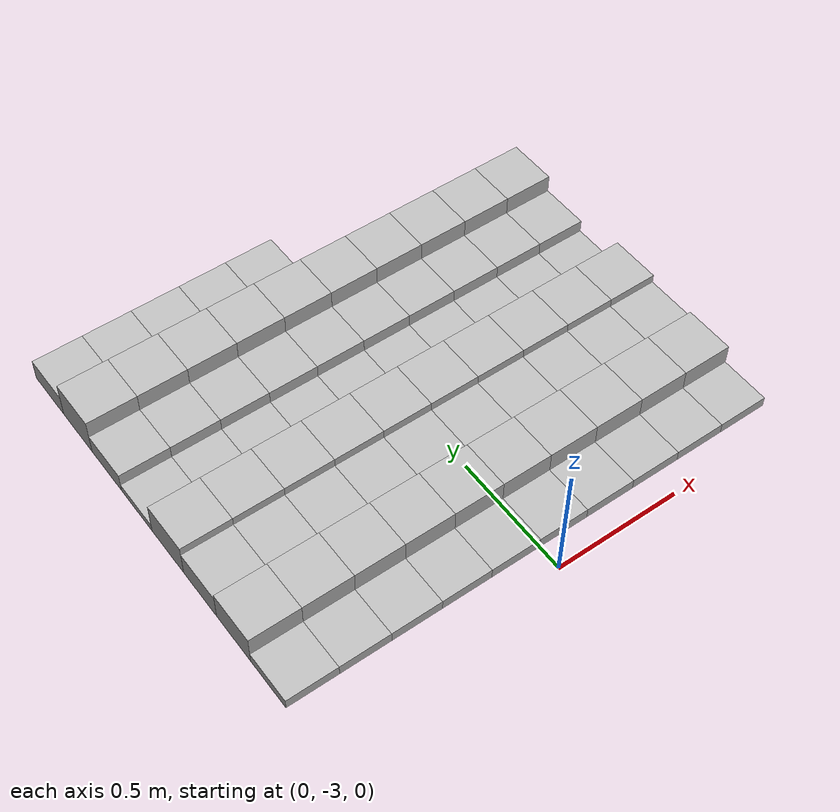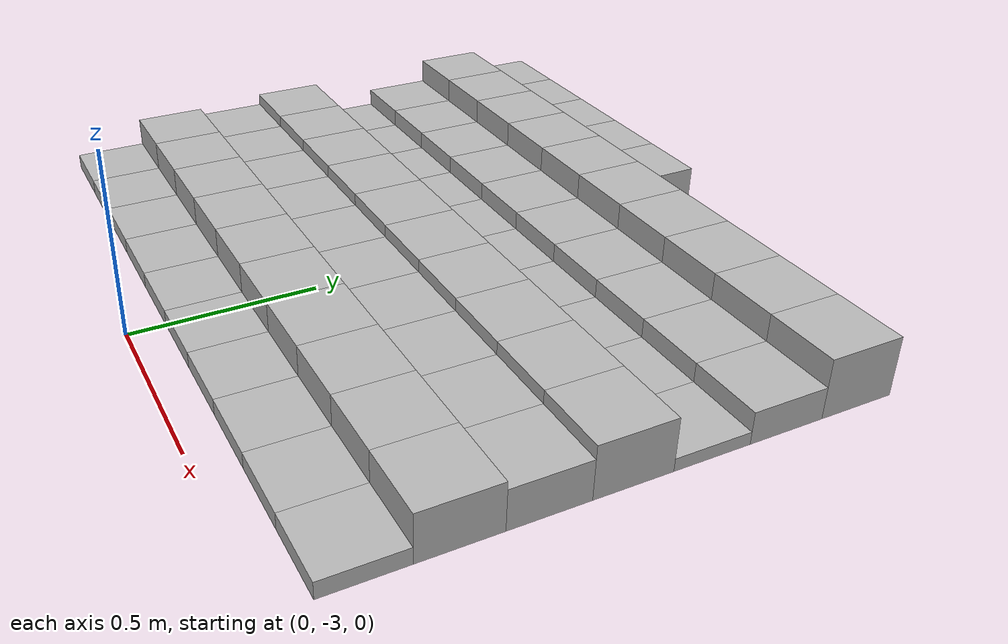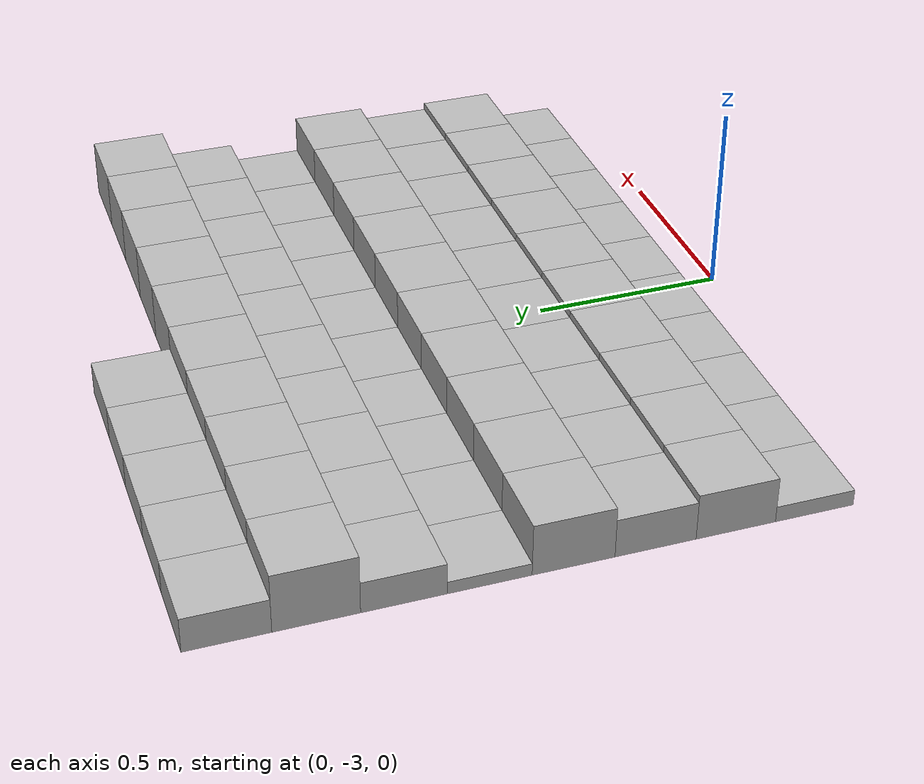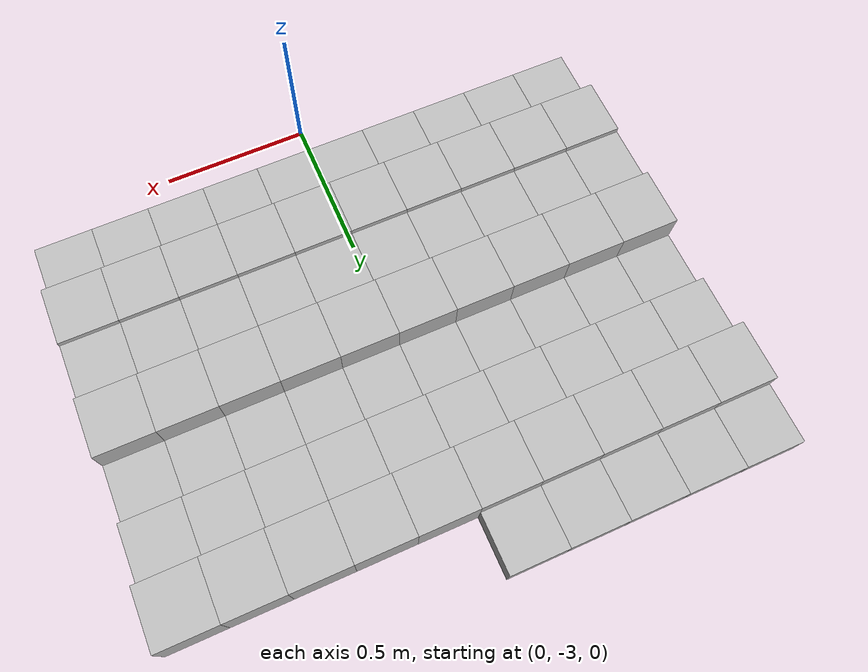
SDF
<sdf version="1.6">
 <model name="Terrain">
  <static>true</static>
  <link name="box_7_0">
   <pose>-0.9 -1.4 0.0462164252197 0 0 0</pose>
   <inertial>
    <mass>1.0</mass>
    <inertia><ixx>0.0</ixx><ixy>0.0</ixy><ixz>0.0</ixz><iyy>0.0</iyy><iyz>0.0</iyz><izz>0.0</izz></inertia>
   </inertial>
   <collision name="collision"><geometry><box><size>0.2 0.2 0.0924328504394</size></box></geometry></collision>
   <visual name="visual"><geometry><box><size>0.2 0.2 0.0924328504394</size></box></geometry></visual>
  </link>
  <link name="box_7_1">
   <pose>-0.7 -1.4 0.0462164252197 0 0 0</pose>
   <inertial>
    <mass>1.0</mass>
    <inertia><ixx>0.0</ixx><ixy>0.0</ixy><ixz>0.0</ixz><iyy>0.0</iyy><iyz>0.0</iyz><izz>0.0</izz></inertia>
   </inertial>
   <collision name="collision"><geometry><box><size>0.2 0.2 0.0924328504394</size></box></geometry></collision>
   <visual name="visual"><geometry><box><size>0.2 0.2 0.0924328504394</size></box></geometry></visual>
  </link>
  <link name="box_7_2">
   <pose>-0.5 -1.4 0.0462164252197 0 0 0</pose>
   <inertial>
    <mass>1.0</mass>
    <inertia><ixx>0.0</ixx><ixy>0.0</ixy><ixz>0.0</ixz><iyy>0.0</iyy><iyz>0.0</iyz><izz>0.0</izz></inertia>
   </inertial>
   <collision name="collision"><geometry><box><size>0.2 0.2 0.0924328504394</size></box></geometry></collision>
   <visual name="visual"><geometry><box><size>0.2 0.2 0.0924328504394</size></box></geometry></visual>
  </link>
  <link name="box_7_3">
   <pose>-0.3 -1.4 0.0462164252197 0 0 0</pose>
   <inertial>
    <mass>1.0</mass>
    <inertia><ixx>0.0</ixx><ixy>0.0</ixy><ixz>0.0</ixz><iyy>0.0</iyy><iyz>0.0</iyz><izz>0.0</izz></inertia>
   </inertial>
   <collision name="collision"><geometry><box><size>0.2 0.2 0.0924328504394</size></box></geometry></collision>
   <visual name="visual"><geometry><box><size>0.2 0.2 0.0924328504394</size></box></geometry></visual>
  </link>
  <link name="box_7_4">
   <pose>-0.1 -1.4 0.0462164252197 0 0 0</pose>
   <inertial>
    <mass>1.0</mass>
    <inertia><ixx>0.0</ixx><ixy>0.0</ixy><ixz>0.0</ixz><iyy>0.0</iyy><iyz>0.0</iyz><izz>0.0</izz></inertia>
   </inertial>
   <collision name="collision"><geometry><box><size>0.2 0.2 0.0924328504394</size></box></geometry></collision>
   <visual name="visual"><geometry><box><size>0.2 0.2 0.0924328504394</size></box></geometry></visual>
  </link>
  <link name="box_8_0">
   <pose>-0.9 -1.6 0.0790505273139 0 0 0</pose>
   <inertial>
    <mass>1.0</mass>
    <inertia><ixx>0.0</ixx><ixy>0.0</ixy><ixz>0.0</ixz><iyy>0.0</iyy><iyz>0.0</iyz><izz>0.0</izz></inertia>
   </inertial>
   <collision name="collision"><geometry><box><size>0.2 0.2 0.158101054628</size></box></geometry></collision>
   <visual name="visual"><geometry><box><size>0.2 0.2 0.158101054628</size></box></geometry></visual>
  </link>
  <link name="box_8_1">
   <pose>-0.7 -1.6 0.0790505273139 0 0 0</pose>
   <inertial>
    <mass>1.0</mass>
    <inertia><ixx>0.0</ixx><ixy>0.0</ixy><ixz>0.0</ixz><iyy>0.0</iyy><iyz>0.0</iyz><izz>0.0</izz></inertia>
   </inertial>
   <collision name="collision"><geometry><box><size>0.2 0.2 0.158101054628</size></box></geometry></collision>
   <visual name="visual"><geometry><box><size>0.2 0.2 0.158101054628</size></box></geometry></visual>
  </link>
  <link name="box_8_2">
   <pose>-0.5 -1.6 0.0790505273139 0 0 0</pose>
   <inertial>
    <mass>1.0</mass>
    <inertia><ixx>0.0</ixx><ixy>0.0</ixy><ixz>0.0</ixz><iyy>0.0</iyy><iyz>0.0</iyz><izz>0.0</izz></inertia>
   </inertial>
   <collision name="collision"><geometry><box><size>0.2 0.2 0.158101054628</size></box></geometry></collision>
   <visual name="visual"><geometry><box><size>0.2 0.2 0.158101054628</size></box></geometry></visual>
  </link>
  <link name="box_8_3">
   <pose>-0.3 -1.6 0.0790505273139 0 0 0</pose>
   <inertial>
    <mass>1.0</mass>
    <inertia><ixx>0.0</ixx><ixy>0.0</ixy><ixz>0.0</ixz><iyy>0.0</iyy><iyz>0.0</iyz><izz>0.0</izz></inertia>
   </inertial>
   <collision name="collision"><geometry><box><size>0.2 0.2 0.158101054628</size></box></geometry></collision>
   <visual name="visual"><geometry><box><size>0.2 0.2 0.158101054628</size></box></geometry></visual>
  </link>
  <link name="box_8_4">
   <pose>-0.1 -1.6 0.0790505273139 0 0 0</pose>
   <inertial>
    <mass>1.0</mass>
    <inertia><ixx>0.0</ixx><ixy>0.0</ixy><ixz>0.0</ixz><iyy>0.0</iyy><iyz>0.0</iyz><izz>0.0</izz></inertia>
   </inertial>
   <collision name="collision"><geometry><box><size>0.2 0.2 0.158101054628</size></box></geometry></collision>
   <visual name="visual"><geometry><box><size>0.2 0.2 0.158101054628</size></box></geometry></visual>
  </link>
  <link name="box_8_5">
   <pose>0.1 -1.6 0.0790505273139 0 0 0</pose>
   <inertial>
    <mass>1.0</mass>
    <inertia><ixx>0.0</ixx><ixy>0.0</ixy><ixz>0.0</ixz><iyy>0.0</iyy><iyz>0.0</iyz><izz>0.0</izz></inertia>
   </inertial>
   <collision name="collision"><geometry><box><size>0.2 0.2 0.158101054628</size></box></geometry></collision>
   <visual name="visual"><geometry><box><size>0.2 0.2 0.158101054628</size></box></geometry></visual>
  </link>
  <link name="box_8_6">
   <pose>0.3 -1.6 0.0790505273139 0 0 0</pose>
   <inertial>
    <mass>1.0</mass>
    <inertia><ixx>0.0</ixx><ixy>0.0</ixy><ixz>0.0</ixz><iyy>0.0</iyy><iyz>0.0</iyz><izz>0.0</izz></inertia>
   </inertial>
   <collision name="collision"><geometry><box><size>0.2 0.2 0.158101054628</size></box></geometry></collision>
   <visual name="visual"><geometry><box><size>0.2 0.2 0.158101054628</size></box></geometry></visual>
  </link>
  <link name="box_8_7">
   <pose>0.5 -1.6 0.0790505273139 0 0 0</pose>
   <inertial>
    <mass>1.0</mass>
    <inertia><ixx>0.0</ixx><ixy>0.0</ixy><ixz>0.0</ixz><iyy>0.0</iyy><iyz>0.0</iyz><izz>0.0</izz></inertia>
   </inertial>
   <collision name="collision"><geometry><box><size>0.2 0.2 0.158101054628</size></box></geometry></collision>
   <visual name="visual"><geometry><box><size>0.2 0.2 0.158101054628</size></box></geometry></visual>
  </link>
  <link name="box_8_8">
   <pose>0.7 -1.6 0.0790505273139 0 0 0</pose>
   <inertial>
    <mass>1.0</mass>
    <inertia><ixx>0.0</ixx><ixy>0.0</ixy><ixz>0.0</ixz><iyy>0.0</iyy><iyz>0.0</iyz><izz>0.0</izz></inertia>
   </inertial>
   <collision name="collision"><geometry><box><size>0.2 0.2 0.158101054628</size></box></geometry></collision>
   <visual name="visual"><geometry><box><size>0.2 0.2 0.158101054628</size></box></geometry></visual>
  </link>
  <link name="box_8_9">
   <pose>0.9 -1.6 0.0790505273139 0 0 0</pose>
   <inertial>
    <mass>1.0</mass>
    <inertia><ixx>0.0</ixx><ixy>0.0</ixy><ixz>0.0</ixz><iyy>0.0</iyy><iyz>0.0</iyz><izz>0.0</izz></inertia>
   </inertial>
   <collision name="collision"><geometry><box><size>0.2 0.2 0.158101054628</size></box></geometry></collision>
   <visual name="visual"><geometry><box><size>0.2 0.2 0.158101054628</size></box></geometry></visual>
  </link>
  <link name="box_9_0">
   <pose>-0.9 -1.8 0.042292439194 0 0 0</pose>
   <inertial>
    <mass>1.0</mass>
    <inertia><ixx>0.0</ixx><ixy>0.0</ixy><ixz>0.0</ixz><iyy>0.0</iyy><iyz>0.0</iyz><izz>0.0</izz></inertia>
   </inertial>
   <collision name="collision"><geometry><box><size>0.2 0.2 0.084584878388</size></box></geometry></collision>
   <visual name="visual"><geometry><box><size>0.2 0.2 0.084584878388</size></box></geometry></visual>
  </link>
  <link name="box_9_1">
   <pose>-0.7 -1.8 0.042292439194 0 0 0</pose>
   <inertial>
    <mass>1.0</mass>
    <inertia><ixx>0.0</ixx><ixy>0.0</ixy><ixz>0.0</ixz><iyy>0.0</iyy><iyz>0.0</iyz><izz>0.0</izz></inertia>
   </inertial>
   <collision name="collision"><geometry><box><size>0.2 0.2 0.084584878388</size></box></geometry></collision>
   <visual name="visual"><geometry><box><size>0.2 0.2 0.084584878388</size></box></geometry></visual>
  </link>
  <link name="box_9_2">
   <pose>-0.5 -1.8 0.042292439194 0 0 0</pose>
   <inertial>
    <mass>1.0</mass>
    <inertia><ixx>0.0</ixx><ixy>0.0</ixy><ixz>0.0</ixz><iyy>0.0</iyy><iyz>0.0</iyz><izz>0.0</izz></inertia>
   </inertial>
   <collision name="collision"><geometry><box><size>0.2 0.2 0.084584878388</size></box></geometry></collision>
   <visual name="visual"><geometry><box><size>0.2 0.2 0.084584878388</size></box></geometry></visual>
  </link>
  <link name="box_9_3">
   <pose>-0.3 -1.8 0.042292439194 0 0 0</pose>
   <inertial>
    <mass>1.0</mass>
    <inertia><ixx>0.0</ixx><ixy>0.0</ixy><ixz>0.0</ixz><iyy>0.0</iyy><iyz>0.0</iyz><izz>0.0</izz></inertia>
   </inertial>
   <collision name="collision"><geometry><box><size>0.2 0.2 0.084584878388</size></box></geometry></collision>
   <visual name="visual"><geometry><box><size>0.2 0.2 0.084584878388</size></box></geometry></visual>
  </link>
  <link name="box_9_4">
   <pose>-0.1 -1.8 0.042292439194 0 0 0</pose>
   <inertial>
    <mass>1.0</mass>
    <inertia><ixx>0.0</ixx><ixy>0.0</ixy><ixz>0.0</ixz><iyy>0.0</iyy><iyz>0.0</iyz><izz>0.0</izz></inertia>
   </inertial>
   <collision name="collision"><geometry><box><size>0.2 0.2 0.084584878388</size></box></geometry></collision>
   <visual name="visual"><geometry><box><size>0.2 0.2 0.084584878388</size></box></geometry></visual>
  </link>
  <link name="box_9_5">
   <pose>0.1 -1.8 0.042292439194 0 0 0</pose>
   <inertial>
    <mass>1.0</mass>
    <inertia><ixx>0.0</ixx><ixy>0.0</ixy><ixz>0.0</ixz><iyy>0.0</iyy><iyz>0.0</iyz><izz>0.0</izz></inertia>
   </inertial>
   <collision name="collision"><geometry><box><size>0.2 0.2 0.084584878388</size></box></geometry></collision>
   <visual name="visual"><geometry><box><size>0.2 0.2 0.084584878388</size></box></geometry></visual>
  </link>
  <link name="box_9_6">
   <pose>0.3 -1.8 0.042292439194 0 0 0</pose>
   <inertial>
    <mass>1.0</mass>
    <inertia><ixx>0.0</ixx><ixy>0.0</ixy><ixz>0.0</ixz><iyy>0.0</iyy><iyz>0.0</iyz><izz>0.0</izz></inertia>
   </inertial>
   <collision name="collision"><geometry><box><size>0.2 0.2 0.084584878388</size></box></geometry></collision>
   <visual name="visual"><geometry><box><size>0.2 0.2 0.084584878388</size></box></geometry></visual>
  </link>
  <link name="box_9_7">
   <pose>0.5 -1.8 0.042292439194 0 0 0</pose>
   <inertial>
    <mass>1.0</mass>
    <inertia><ixx>0.0</ixx><ixy>0.0</ixy><ixz>0.0</ixz><iyy>0.0</iyy><iyz>0.0</iyz><izz>0.0</izz></inertia>
   </inertial>
   <collision name="collision"><geometry><box><size>0.2 0.2 0.084584878388</size></box></geometry></collision>
   <visual name="visual"><geometry><box><size>0.2 0.2 0.084584878388</size></box></geometry></visual>
  </link>
  <link name="box_9_8">
   <pose>0.7 -1.8 0.042292439194 0 0 0</pose>
   <inertial>
    <mass>1.0</mass>
    <inertia><ixx>0.0</ixx><ixy>0.0</ixy><ixz>0.0</ixz><iyy>0.0</iyy><iyz>0.0</iyz><izz>0.0</izz></inertia>
   </inertial>
   <collision name="collision"><geometry><box><size>0.2 0.2 0.084584878388</size></box></geometry></collision>
   <visual name="visual"><geometry><box><size>0.2 0.2 0.084584878388</size></box></geometry></visual>
  </link>
  <link name="box_9_9">
   <pose>0.9 -1.8 0.042292439194 0 0 0</pose>
   <inertial>
    <mass>1.0</mass>
    <inertia><ixx>0.0</ixx><ixy>0.0</ixy><ixz>0.0</ixz><iyy>0.0</iyy><iyz>0.0</iyz><izz>0.0</izz></inertia>
   </inertial>
   <collision name="collision"><geometry><box><size>0.2 0.2 0.084584878388</size></box></geometry></collision>
   <visual name="visual"><geometry><box><size>0.2 0.2 0.084584878388</size></box></geometry></visual>
  </link>
  <link name="box_10_0">
   <pose>-0.9 -2.0 0.0166693812321 0 0 0</pose>
   <inertial>
    <mass>1.0</mass>
    <inertia><ixx>0.0</ixx><ixy>0.0</ixy><ixz>0.0</ixz><iyy>0.0</iyy><iyz>0.0</iyz><izz>0.0</izz></inertia>
   </inertial>
   <collision name="collision"><geometry><box><size>0.2 0.2 0.0333387624643</size></box></geometry></collision>
   <visual name="visual"><geometry><box><size>0.2 0.2 0.0333387624643</size></box></geometry></visual>
  </link>
  <link name="box_10_1">
   <pose>-0.7 -2.0 0.0166693812321 0 0 0</pose>
   <inertial>
    <mass>1.0</mass>
    <inertia><ixx>0.0</ixx><ixy>0.0</ixy><ixz>0.0</ixz><iyy>0.0</iyy><iyz>0.0</iyz><izz>0.0</izz></inertia>
   </inertial>
   <collision name="collision"><geometry><box><size>0.2 0.2 0.0333387624643</size></box></geometry></collision>
   <visual name="visual"><geometry><box><size>0.2 0.2 0.0333387624643</size></box></geometry></visual>
  </link>
  <link name="box_10_2">
   <pose>-0.5 -2.0 0.0166693812321 0 0 0</pose>
   <inertial>
    <mass>1.0</mass>
    <inertia><ixx>0.0</ixx><ixy>0.0</ixy><ixz>0.0</ixz><iyy>0.0</iyy><iyz>0.0</iyz><izz>0.0</izz></inertia>
   </inertial>
   <collision name="collision"><geometry><box><size>0.2 0.2 0.0333387624643</size></box></geometry></collision>
   <visual name="visual"><geometry><box><size>0.2 0.2 0.0333387624643</size></box></geometry></visual>
  </link>
  <link name="box_10_3">
   <pose>-0.3 -2.0 0.0166693812321 0 0 0</pose>
   <inertial>
    <mass>1.0</mass>
    <inertia><ixx>0.0</ixx><ixy>0.0</ixy><ixz>0.0</ixz><iyy>0.0</iyy><iyz>0.0</iyz><izz>0.0</izz></inertia>
   </inertial>
   <collision name="collision"><geometry><box><size>0.2 0.2 0.0333387624643</size></box></geometry></collision>
   <visual name="visual"><geometry><box><size>0.2 0.2 0.0333387624643</size></box></geometry></visual>
  </link>
  <link name="box_10_4">
   <pose>-0.1 -2.0 0.0166693812321 0 0 0</pose>
   <inertial>
    <mass>1.0</mass>
    <inertia><ixx>0.0</ixx><ixy>0.0</ixy><ixz>0.0</ixz><iyy>0.0</iyy><iyz>0.0</iyz><izz>0.0</izz></inertia>
   </inertial>
   <collision name="collision"><geometry><box><size>0.2 0.2 0.0333387624643</size></box></geometry></collision>
   <visual name="visual"><geometry><box><size>0.2 0.2 0.0333387624643</size></box></geometry></visual>
  </link>
  <link name="box_10_5">
   <pose>0.1 -2.0 0.0166693812321 0 0 0</pose>
   <inertial>
    <mass>1.0</mass>
    <inertia><ixx>0.0</ixx><ixy>0.0</ixy><ixz>0.0</ixz><iyy>0.0</iyy><iyz>0.0</iyz><izz>0.0</izz></inertia>
   </inertial>
   <collision name="collision"><geometry><box><size>0.2 0.2 0.0333387624643</size></box></geometry></collision>
   <visual name="visual"><geometry><box><size>0.2 0.2 0.0333387624643</size></box></geometry></visual>
  </link>
  <link name="box_10_6">
   <pose>0.3 -2.0 0.0166693812321 0 0 0</pose>
   <inertial>
    <mass>1.0</mass>
    <inertia><ixx>0.0</ixx><ixy>0.0</ixy><ixz>0.0</ixz><iyy>0.0</iyy><iyz>0.0</iyz><izz>0.0</izz></inertia>
   </inertial>
   <collision name="collision"><geometry><box><size>0.2 0.2 0.0333387624643</size></box></geometry></collision>
   <visual name="visual"><geometry><box><size>0.2 0.2 0.0333387624643</size></box></geometry></visual>
  </link>
  <link name="box_10_7">
   <pose>0.5 -2.0 0.0166693812321 0 0 0</pose>
   <inertial>
    <mass>1.0</mass>
    <inertia><ixx>0.0</ixx><ixy>0.0</ixy><ixz>0.0</ixz><iyy>0.0</iyy><iyz>0.0</iyz><izz>0.0</izz></inertia>
   </inertial>
   <collision name="collision"><geometry><box><size>0.2 0.2 0.0333387624643</size></box></geometry></collision>
   <visual name="visual"><geometry><box><size>0.2 0.2 0.0333387624643</size></box></geometry></visual>
  </link>
  <link name="box_10_8">
   <pose>0.7 -2.0 0.0166693812321 0 0 0</pose>
   <inertial>
    <mass>1.0</mass>
    <inertia><ixx>0.0</ixx><ixy>0.0</ixy><ixz>0.0</ixz><iyy>0.0</iyy><iyz>0.0</iyz><izz>0.0</izz></inertia>
   </inertial>
   <collision name="collision"><geometry><box><size>0.2 0.2 0.0333387624643</size></box></geometry></collision>
   <visual name="visual"><geometry><box><size>0.2 0.2 0.0333387624643</size></box></geometry></visual>
  </link>
  <link name="box_10_9">
   <pose>0.9 -2.0 0.0166693812321 0 0 0</pose>
   <inertial>
    <mass>1.0</mass>
    <inertia><ixx>0.0</ixx><ixy>0.0</ixy><ixz>0.0</ixz><iyy>0.0</iyy><iyz>0.0</iyz><izz>0.0</izz></inertia>
   </inertial>
   <collision name="collision"><geometry><box><size>0.2 0.2 0.0333387624643</size></box></geometry></collision>
   <visual name="visual"><geometry><box><size>0.2 0.2 0.0333387624643</size></box></geometry></visual>
  </link>
  <link name="box_11_0">
   <pose>-0.9 -2.2 0.0699433199769 0 0 0</pose>
   <inertial>
    <mass>1.0</mass>
    <inertia><ixx>0.0</ixx><ixy>0.0</ixy><ixz>0.0</ixz><iyy>0.0</iyy><iyz>0.0</iyz><izz>0.0</izz></inertia>
   </inertial>
   <collision name="collision"><geometry><box><size>0.2 0.2 0.139886639954</size></box></geometry></collision>
   <visual name="visual"><geometry><box><size>0.2 0.2 0.139886639954</size></box></geometry></visual>
  </link>
  <link name="box_11_1">
   <pose>-0.7 -2.2 0.0699433199769 0 0 0</pose>
   <inertial>
    <mass>1.0</mass>
    <inertia><ixx>0.0</ixx><ixy>0.0</ixy><ixz>0.0</ixz><iyy>0.0</iyy><iyz>0.0</iyz><izz>0.0</izz></inertia>
   </inertial>
   <collision name="collision"><geometry><box><size>0.2 0.2 0.139886639954</size></box></geometry></collision>
   <visual name="visual"><geometry><box><size>0.2 0.2 0.139886639954</size></box></geometry></visual>
  </link>
  <link name="box_11_2">
   <pose>-0.5 -2.2 0.0699433199769 0 0 0</pose>
   <inertial>
    <mass>1.0</mass>
    <inertia><ixx>0.0</ixx><ixy>0.0</ixy><ixz>0.0</ixz><iyy>0.0</iyy><iyz>0.0</iyz><izz>0.0</izz></inertia>
   </inertial>
   <collision name="collision"><geometry><box><size>0.2 0.2 0.139886639954</size></box></geometry></collision>
   <visual name="visual"><geometry><box><size>0.2 0.2 0.139886639954</size></box></geometry></visual>
  </link>
  <link name="box_11_3">
   <pose>-0.3 -2.2 0.0699433199769 0 0 0</pose>
   <inertial>
    <mass>1.0</mass>
    <inertia><ixx>0.0</ixx><ixy>0.0</ixy><ixz>0.0</ixz><iyy>0.0</iyy><iyz>0.0</iyz><izz>0.0</izz></inertia>
   </inertial>
   <collision name="collision"><geometry><box><size>0.2 0.2 0.139886639954</size></box></geometry></collision>
   <visual name="visual"><geometry><box><size>0.2 0.2 0.139886639954</size></box></geometry></visual>
  </link>
  <link name="box_11_4">
   <pose>-0.1 -2.2 0.0699433199769 0 0 0</pose>
   <inertial>
    <mass>1.0</mass>
    <inertia><ixx>0.0</ixx><ixy>0.0</ixy><ixz>0.0</ixz><iyy>0.0</iyy><iyz>0.0</iyz><izz>0.0</izz></inertia>
   </inertial>
   <collision name="collision"><geometry><box><size>0.2 0.2 0.139886639954</size></box></geometry></collision>
   <visual name="visual"><geometry><box><size>0.2 0.2 0.139886639954</size></box></geometry></visual>
  </link>
  <link name="box_11_5">
   <pose>0.1 -2.2 0.0699433199769 0 0 0</pose>
   <inertial>
    <mass>1.0</mass>
    <inertia><ixx>0.0</ixx><ixy>0.0</ixy><ixz>0.0</ixz><iyy>0.0</iyy><iyz>0.0</iyz><izz>0.0</izz></inertia>
   </inertial>
   <collision name="collision"><geometry><box><size>0.2 0.2 0.139886639954</size></box></geometry></collision>
   <visual name="visual"><geometry><box><size>0.2 0.2 0.139886639954</size></box></geometry></visual>
  </link>
  <link name="box_11_6">
   <pose>0.3 -2.2 0.0699433199769 0 0 0</pose>
   <inertial>
    <mass>1.0</mass>
    <inertia><ixx>0.0</ixx><ixy>0.0</ixy><ixz>0.0</ixz><iyy>0.0</iyy><iyz>0.0</iyz><izz>0.0</izz></inertia>
   </inertial>
   <collision name="collision"><geometry><box><size>0.2 0.2 0.139886639954</size></box></geometry></collision>
   <visual name="visual"><geometry><box><size>0.2 0.2 0.139886639954</size></box></geometry></visual>
  </link>
  <link name="box_11_7">
   <pose>0.5 -2.2 0.0699433199769 0 0 0</pose>
   <inertial>
    <mass>1.0</mass>
    <inertia><ixx>0.0</ixx><ixy>0.0</ixy><ixz>0.0</ixz><iyy>0.0</iyy><iyz>0.0</iyz><izz>0.0</izz></inertia>
   </inertial>
   <collision name="collision"><geometry><box><size>0.2 0.2 0.139886639954</size></box></geometry></collision>
   <visual name="visual"><geometry><box><size>0.2 0.2 0.139886639954</size></box></geometry></visual>
  </link>
  <link name="box_11_8">
   <pose>0.7 -2.2 0.0699433199769 0 0 0</pose>
   <inertial>
    <mass>1.0</mass>
    <inertia><ixx>0.0</ixx><ixy>0.0</ixy><ixz>0.0</ixz><iyy>0.0</iyy><iyz>0.0</iyz><izz>0.0</izz></inertia>
   </inertial>
   <collision name="collision"><geometry><box><size>0.2 0.2 0.139886639954</size></box></geometry></collision>
   <visual name="visual"><geometry><box><size>0.2 0.2 0.139886639954</size></box></geometry></visual>
  </link>
  <link name="box_11_9">
   <pose>0.9 -2.2 0.0699433199769 0 0 0</pose>
   <inertial>
    <mass>1.0</mass>
    <inertia><ixx>0.0</ixx><ixy>0.0</ixy><ixz>0.0</ixz><iyy>0.0</iyy><iyz>0.0</iyz><izz>0.0</izz></inertia>
   </inertial>
   <collision name="collision"><geometry><box><size>0.2 0.2 0.139886639954</size></box></geometry></collision>
   <visual name="visual"><geometry><box><size>0.2 0.2 0.139886639954</size></box></geometry></visual>
  </link>
  <link name="box_12_0">
   <pose>-0.9 -2.4 0.0526246559004 0 0 0</pose>
   <inertial>
    <mass>1.0</mass>
    <inertia><ixx>0.0</ixx><ixy>0.0</ixy><ixz>0.0</ixz><iyy>0.0</iyy><iyz>0.0</iyz><izz>0.0</izz></inertia>
   </inertial>
   <collision name="collision"><geometry><box><size>0.2 0.2 0.105249311801</size></box></geometry></collision>
   <visual name="visual"><geometry><box><size>0.2 0.2 0.105249311801</size></box></geometry></visual>
  </link>
  <link name="box_12_1">
   <pose>-0.7 -2.4 0.0526246559004 0 0 0</pose>
   <inertial>
    <mass>1.0</mass>
    <inertia><ixx>0.0</ixx><ixy>0.0</ixy><ixz>0.0</ixz><iyy>0.0</iyy><iyz>0.0</iyz><izz>0.0</izz></inertia>
   </inertial>
   <collision name="collision"><geometry><box><size>0.2 0.2 0.105249311801</size></box></geometry></collision>
   <visual name="visual"><geometry><box><size>0.2 0.2 0.105249311801</size></box></geometry></visual>
  </link>
  <link name="box_12_2">
   <pose>-0.5 -2.4 0.0526246559004 0 0 0</pose>
   <inertial>
    <mass>1.0</mass>
    <inertia><ixx>0.0</ixx><ixy>0.0</ixy><ixz>0.0</ixz><iyy>0.0</iyy><iyz>0.0</iyz><izz>0.0</izz></inertia>
   </inertial>
   <collision name="collision"><geometry><box><size>0.2 0.2 0.105249311801</size></box></geometry></collision>
   <visual name="visual"><geometry><box><size>0.2 0.2 0.105249311801</size></box></geometry></visual>
  </link>
  <link name="box_12_3">
   <pose>-0.3 -2.4 0.0526246559004 0 0 0</pose>
   <inertial>
    <mass>1.0</mass>
    <inertia><ixx>0.0</ixx><ixy>0.0</ixy><ixz>0.0</ixz><iyy>0.0</iyy><iyz>0.0</iyz><izz>0.0</izz></inertia>
   </inertial>
   <collision name="collision"><geometry><box><size>0.2 0.2 0.105249311801</size></box></geometry></collision>
   <visual name="visual"><geometry><box><size>0.2 0.2 0.105249311801</size></box></geometry></visual>
  </link>
  <link name="box_12_4">
   <pose>-0.1 -2.4 0.0526246559004 0 0 0</pose>
   <inertial>
    <mass>1.0</mass>
    <inertia><ixx>0.0</ixx><ixy>0.0</ixy><ixz>0.0</ixz><iyy>0.0</iyy><iyz>0.0</iyz><izz>0.0</izz></inertia>
   </inertial>
   <collision name="collision"><geometry><box><size>0.2 0.2 0.105249311801</size></box></geometry></collision>
   <visual name="visual"><geometry><box><size>0.2 0.2 0.105249311801</size></box></geometry></visual>
  </link>
  <link name="box_12_5">
   <pose>0.1 -2.4 0.0526246559004 0 0 0</pose>
   <inertial>
    <mass>1.0</mass>
    <inertia><ixx>0.0</ixx><ixy>0.0</ixy><ixz>0.0</ixz><iyy>0.0</iyy><iyz>0.0</iyz><izz>0.0</izz></inertia>
   </inertial>
   <collision name="collision"><geometry><box><size>0.2 0.2 0.105249311801</size></box></geometry></collision>
   <visual name="visual"><geometry><box><size>0.2 0.2 0.105249311801</size></box></geometry></visual>
  </link>
  <link name="box_12_6">
   <pose>0.3 -2.4 0.0526246559004 0 0 0</pose>
   <inertial>
    <mass>1.0</mass>
    <inertia><ixx>0.0</ixx><ixy>0.0</ixy><ixz>0.0</ixz><iyy>0.0</iyy><iyz>0.0</iyz><izz>0.0</izz></inertia>
   </inertial>
   <collision name="collision"><geometry><box><size>0.2 0.2 0.105249311801</size></box></geometry></collision>
   <visual name="visual"><geometry><box><size>0.2 0.2 0.105249311801</size></box></geometry></visual>
  </link>
  <link name="box_12_7">
   <pose>0.5 -2.4 0.0526246559004 0 0 0</pose>
   <inertial>
    <mass>1.0</mass>
    <inertia><ixx>0.0</ixx><ixy>0.0</ixy><ixz>0.0</ixz><iyy>0.0</iyy><iyz>0.0</iyz><izz>0.0</izz></inertia>
   </inertial>
   <collision name="collision"><geometry><box><size>0.2 0.2 0.105249311801</size></box></geometry></collision>
   <visual name="visual"><geometry><box><size>0.2 0.2 0.105249311801</size></box></geometry></visual>
  </link>
  <link name="box_12_8">
   <pose>0.7 -2.4 0.0526246559004 0 0 0</pose>
   <inertial>
    <mass>1.0</mass>
    <inertia><ixx>0.0</ixx><ixy>0.0</ixy><ixz>0.0</ixz><iyy>0.0</iyy><iyz>0.0</iyz><izz>0.0</izz></inertia>
   </inertial>
   <collision name="collision"><geometry><box><size>0.2 0.2 0.105249311801</size></box></geometry></collision>
   <visual name="visual"><geometry><box><size>0.2 0.2 0.105249311801</size></box></geometry></visual>
  </link>
  <link name="box_12_9">
   <pose>0.9 -2.4 0.0526246559004 0 0 0</pose>
   <inertial>
    <mass>1.0</mass>
    <inertia><ixx>0.0</ixx><ixy>0.0</ixy><ixz>0.0</ixz><iyy>0.0</iyy><iyz>0.0</iyz><izz>0.0</izz></inertia>
   </inertial>
   <collision name="collision"><geometry><box><size>0.2 0.2 0.105249311801</size></box></geometry></collision>
   <visual name="visual"><geometry><box><size>0.2 0.2 0.105249311801</size></box></geometry></visual>
  </link>
  <link name="box_13_0">
   <pose>-0.9 -2.6 0.0626281024479 0 0 0</pose>
   <inertial>
    <mass>1.0</mass>
    <inertia><ixx>0.0</ixx><ixy>0.0</ixy><ixz>0.0</ixz><iyy>0.0</iyy><iyz>0.0</iyz><izz>0.0</izz></inertia>
   </inertial>
   <collision name="collision"><geometry><box><size>0.2 0.2 0.125256204896</size></box></geometry></collision>
   <visual name="visual"><geometry><box><size>0.2 0.2 0.125256204896</size></box></geometry></visual>
  </link>
  <link name="box_13_1">
   <pose>-0.7 -2.6 0.0626281024479 0 0 0</pose>
   <inertial>
    <mass>1.0</mass>
    <inertia><ixx>0.0</ixx><ixy>0.0</ixy><ixz>0.0</ixz><iyy>0.0</iyy><iyz>0.0</iyz><izz>0.0</izz></inertia>
   </inertial>
   <collision name="collision"><geometry><box><size>0.2 0.2 0.125256204896</size></box></geometry></collision>
   <visual name="visual"><geometry><box><size>0.2 0.2 0.125256204896</size></box></geometry></visual>
  </link>
  <link name="box_13_2">
   <pose>-0.5 -2.6 0.0626281024479 0 0 0</pose>
   <inertial>
    <mass>1.0</mass>
    <inertia><ixx>0.0</ixx><ixy>0.0</ixy><ixz>0.0</ixz><iyy>0.0</iyy><iyz>0.0</iyz><izz>0.0</izz></inertia>
   </inertial>
   <collision name="collision"><geometry><box><size>0.2 0.2 0.125256204896</size></box></geometry></collision>
   <visual name="visual"><geometry><box><size>0.2 0.2 0.125256204896</size></box></geometry></visual>
  </link>
  <link name="box_13_3">
   <pose>-0.3 -2.6 0.0626281024479 0 0 0</pose>
   <inertial>
    <mass>1.0</mass>
    <inertia><ixx>0.0</ixx><ixy>0.0</ixy><ixz>0.0</ixz><iyy>0.0</iyy><iyz>0.0</iyz><izz>0.0</izz></inertia>
   </inertial>
   <collision name="collision"><geometry><box><size>0.2 0.2 0.125256204896</size></box></geometry></collision>
   <visual name="visual"><geometry><box><size>0.2 0.2 0.125256204896</size></box></geometry></visual>
  </link>
  <link name="box_13_4">
   <pose>-0.1 -2.6 0.0626281024479 0 0 0</pose>
   <inertial>
    <mass>1.0</mass>
    <inertia><ixx>0.0</ixx><ixy>0.0</ixy><ixz>0.0</ixz><iyy>0.0</iyy><iyz>0.0</iyz><izz>0.0</izz></inertia>
   </inertial>
   <collision name="collision"><geometry><box><size>0.2 0.2 0.125256204896</size></box></geometry></collision>
   <visual name="visual"><geometry><box><size>0.2 0.2 0.125256204896</size></box></geometry></visual>
  </link>
  <link name="box_13_5">
   <pose>0.1 -2.6 0.0626281024479 0 0 0</pose>
   <inertial>
    <mass>1.0</mass>
    <inertia><ixx>0.0</ixx><ixy>0.0</ixy><ixz>0.0</ixz><iyy>0.0</iyy><iyz>0.0</iyz><izz>0.0</izz></inertia>
   </inertial>
   <collision name="collision"><geometry><box><size>0.2 0.2 0.125256204896</size></box></geometry></collision>
   <visual name="visual"><geometry><box><size>0.2 0.2 0.125256204896</size></box></geometry></visual>
  </link>
  <link name="box_13_6">
   <pose>0.3 -2.6 0.0626281024479 0 0 0</pose>
   <inertial>
    <mass>1.0</mass>
    <inertia><ixx>0.0</ixx><ixy>0.0</ixy><ixz>0.0</ixz><iyy>0.0</iyy><iyz>0.0</iyz><izz>0.0</izz></inertia>
   </inertial>
   <collision name="collision"><geometry><box><size>0.2 0.2 0.125256204896</size></box></geometry></collision>
   <visual name="visual"><geometry><box><size>0.2 0.2 0.125256204896</size></box></geometry></visual>
  </link>
  <link name="box_13_7">
   <pose>0.5 -2.6 0.0626281024479 0 0 0</pose>
   <inertial>
    <mass>1.0</mass>
    <inertia><ixx>0.0</ixx><ixy>0.0</ixy><ixz>0.0</ixz><iyy>0.0</iyy><iyz>0.0</iyz><izz>0.0</izz></inertia>
   </inertial>
   <collision name="collision"><geometry><box><size>0.2 0.2 0.125256204896</size></box></geometry></collision>
   <visual name="visual"><geometry><box><size>0.2 0.2 0.125256204896</size></box></geometry></visual>
  </link>
  <link name="box_13_8">
   <pose>0.7 -2.6 0.0626281024479 0 0 0</pose>
   <inertial>
    <mass>1.0</mass>
    <inertia><ixx>0.0</ixx><ixy>0.0</ixy><ixz>0.0</ixz><iyy>0.0</iyy><iyz>0.0</iyz><izz>0.0</izz></inertia>
   </inertial>
   <collision name="collision"><geometry><box><size>0.2 0.2 0.125256204896</size></box></geometry></collision>
   <visual name="visual"><geometry><box><size>0.2 0.2 0.125256204896</size></box></geometry></visual>
  </link>
  <link name="box_13_9">
   <pose>0.9 -2.6 0.0626281024479 0 0 0</pose>
   <inertial>
    <mass>1.0</mass>
    <inertia><ixx>0.0</ixx><ixy>0.0</ixy><ixz>0.0</ixz><iyy>0.0</iyy><iyz>0.0</iyz><izz>0.0</izz></inertia>
   </inertial>
   <collision name="collision"><geometry><box><size>0.2 0.2 0.125256204896</size></box></geometry></collision>
   <visual name="visual"><geometry><box><size>0.2 0.2 0.125256204896</size></box></geometry></visual>
  </link>
  <link name="box_14_0">
   <pose>-0.9 -2.8 0.0214117387586 0 0 0</pose>
   <inertial>
    <mass>1.0</mass>
    <inertia><ixx>0.0</ixx><ixy>0.0</ixy><ixz>0.0</ixz><iyy>0.0</iyy><iyz>0.0</iyz><izz>0.0</izz></inertia>
   </inertial>
   <collision name="collision"><geometry><box><size>0.2 0.2 0.0428234775173</size></box></geometry></collision>
   <visual name="visual"><geometry><box><size>0.2 0.2 0.0428234775173</size></box></geometry></visual>
  </link>
  <link name="box_14_1">
   <pose>-0.7 -2.8 0.0214117387586 0 0 0</pose>
   <inertial>
    <mass>1.0</mass>
    <inertia><ixx>0.0</ixx><ixy>0.0</ixy><ixz>0.0</ixz><iyy>0.0</iyy><iyz>0.0</iyz><izz>0.0</izz></inertia>
   </inertial>
   <collision name="collision"><geometry><box><size>0.2 0.2 0.0428234775173</size></box></geometry></collision>
   <visual name="visual"><geometry><box><size>0.2 0.2 0.0428234775173</size></box></geometry></visual>
  </link>
  <link name="box_14_2">
   <pose>-0.5 -2.8 0.0214117387586 0 0 0</pose>
   <inertial>
    <mass>1.0</mass>
    <inertia><ixx>0.0</ixx><ixy>0.0</ixy><ixz>0.0</ixz><iyy>0.0</iyy><iyz>0.0</iyz><izz>0.0</izz></inertia>
   </inertial>
   <collision name="collision"><geometry><box><size>0.2 0.2 0.0428234775173</size></box></geometry></collision>
   <visual name="visual"><geometry><box><size>0.2 0.2 0.0428234775173</size></box></geometry></visual>
  </link>
  <link name="box_14_3">
   <pose>-0.3 -2.8 0.0214117387586 0 0 0</pose>
   <inertial>
    <mass>1.0</mass>
    <inertia><ixx>0.0</ixx><ixy>0.0</ixy><ixz>0.0</ixz><iyy>0.0</iyy><iyz>0.0</iyz><izz>0.0</izz></inertia>
   </inertial>
   <collision name="collision"><geometry><box><size>0.2 0.2 0.0428234775173</size></box></geometry></collision>
   <visual name="visual"><geometry><box><size>0.2 0.2 0.0428234775173</size></box></geometry></visual>
  </link>
  <link name="box_14_4">
   <pose>-0.1 -2.8 0.0214117387586 0 0 0</pose>
   <inertial>
    <mass>1.0</mass>
    <inertia><ixx>0.0</ixx><ixy>0.0</ixy><ixz>0.0</ixz><iyy>0.0</iyy><iyz>0.0</iyz><izz>0.0</izz></inertia>
   </inertial>
   <collision name="collision"><geometry><box><size>0.2 0.2 0.0428234775173</size></box></geometry></collision>
   <visual name="visual"><geometry><box><size>0.2 0.2 0.0428234775173</size></box></geometry></visual>
  </link>
  <link name="box_14_5">
   <pose>0.1 -2.8 0.0214117387586 0 0 0</pose>
   <inertial>
    <mass>1.0</mass>
    <inertia><ixx>0.0</ixx><ixy>0.0</ixy><ixz>0.0</ixz><iyy>0.0</iyy><iyz>0.0</iyz><izz>0.0</izz></inertia>
   </inertial>
   <collision name="collision"><geometry><box><size>0.2 0.2 0.0428234775173</size></box></geometry></collision>
   <visual name="visual"><geometry><box><size>0.2 0.2 0.0428234775173</size></box></geometry></visual>
  </link>
  <link name="box_14_6">
   <pose>0.3 -2.8 0.0214117387586 0 0 0</pose>
   <inertial>
    <mass>1.0</mass>
    <inertia><ixx>0.0</ixx><ixy>0.0</ixy><ixz>0.0</ixz><iyy>0.0</iyy><iyz>0.0</iyz><izz>0.0</izz></inertia>
   </inertial>
   <collision name="collision"><geometry><box><size>0.2 0.2 0.0428234775173</size></box></geometry></collision>
   <visual name="visual"><geometry><box><size>0.2 0.2 0.0428234775173</size></box></geometry></visual>
  </link>
  <link name="box_14_7">
   <pose>0.5 -2.8 0.0214117387586 0 0 0</pose>
   <inertial>
    <mass>1.0</mass>
    <inertia><ixx>0.0</ixx><ixy>0.0</ixy><ixz>0.0</ixz><iyy>0.0</iyy><iyz>0.0</iyz><izz>0.0</izz></inertia>
   </inertial>
   <collision name="collision"><geometry><box><size>0.2 0.2 0.0428234775173</size></box></geometry></collision>
   <visual name="visual"><geometry><box><size>0.2 0.2 0.0428234775173</size></box></geometry></visual>
  </link>
  <link name="box_14_8">
   <pose>0.7 -2.8 0.0214117387586 0 0 0</pose>
   <inertial>
    <mass>1.0</mass>
    <inertia><ixx>0.0</ixx><ixy>0.0</ixy><ixz>0.0</ixz><iyy>0.0</iyy><iyz>0.0</iyz><izz>0.0</izz></inertia>
   </inertial>
   <collision name="collision"><geometry><box><size>0.2 0.2 0.0428234775173</size></box></geometry></collision>
   <visual name="visual"><geometry><box><size>0.2 0.2 0.0428234775173</size></box></geometry></visual>
  </link>
  <link name="box_14_9">
   <pose>0.9 -2.8 0.0214117387586 0 0 0</pose>
   <inertial>
    <mass>1.0</mass>
    <inertia><ixx>0.0</ixx><ixy>0.0</ixy><ixz>0.0</ixz><iyy>0.0</iyy><iyz>0.0</iyz><izz>0.0</izz></inertia>
   </inertial>
   <collision name="collision"><geometry><box><size>0.2 0.2 0.0428234775173</size></box></geometry></collision>
   <visual name="visual"><geometry><box><size>0.2 0.2 0.0428234775173</size></box></geometry></visual>
  </link>
 </model>
</sdf>
